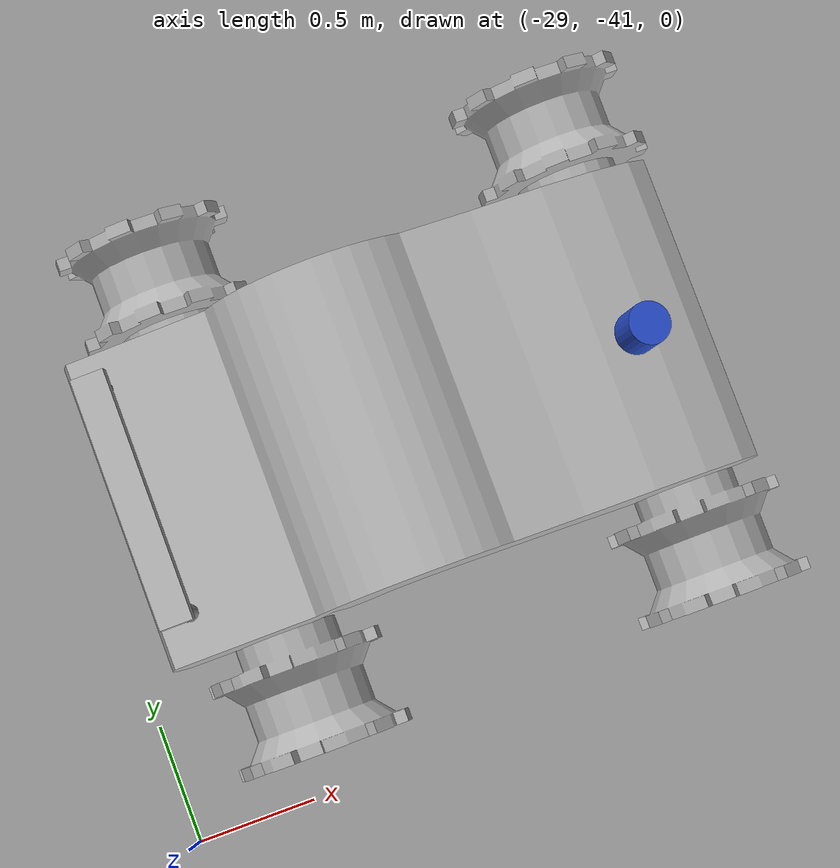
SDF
<sdf version="1.7">
 <world name="default">
  <light name="sun" type="directional">
   <pose>0 0 10 0 -0 0</pose>
   <diffuse>0.8 0.8 0.8 1</diffuse>
   <specular>0.2 0.2 0.2 1</specular>
   <attenuation>
    <range>1000</range>
    <constant>0.9</constant>
    <linear>0.01</linear>
    <quadratic>0.001</quadratic>
   </attenuation>
   <direction>-0.5 0.1 -0.9</direction>
   <spot><inner_angle>0</inner_angle><outer_angle>0</outer_angle><falloff>0</falloff></spot>
  </light>
  <model name="ground_plane">
   <static>1</static>
   <link name="link">
    <collision name="collision">
     <geometry><plane><normal>0 0 1</normal><size>100 100</size></plane></geometry>
     <surface><friction><ode><mu>100</mu><mu2>50</mu2></ode></friction></surface>
    </collision>
    <visual name="visual">
     <cast_shadows>0</cast_shadows>
     <geometry><plane><normal>0 0 1</normal><size>100 100</size></plane></geometry>
     <material>
      <script><uri>file://media/materials/scripts/gazebo.material</uri><name>Gazebo/Grey</name></script>
     </material>
    </visual>
   </link>
  </model>
  <gravity>0 0 -1.62</gravity>
  <magnetic_field>6e-06 2.3e-05 -4.2e-05</magnetic_field>
  <atmosphere type="adiabatic"/>
  <physics type="ode">
   <max_step_size>0.001</max_step_size>
   <real_time_factor>1</real_time_factor>
   <real_time_update_rate>1000</real_time_update_rate>
  </physics>
  <scene><ambient>0.4 0.4 0.4 1</ambient><background>0.7 0.7 0.7 1</background><shadows>1</shadows></scene>
  <spherical_coordinates>
   <surface_model>EARTH_WGS84</surface_model>
   <latitude_deg>0</latitude_deg>
   <longitude_deg>0</longitude_deg>
   <elevation>0</elevation>
   <heading_deg>0</heading_deg>
  </spherical_coordinates>
  <model name="kari_map">
   <link name="link_0">
    <inertial>
     <mass>100</mass>
     <inertia><ixx>16.6667</ixx><ixy>0</ixy><ixz>0</ixz><iyy>16.6667</iyy><iyz>0</iyz><izz>16.6667</izz></inertia>
    </inertial>
    <kinematic>1</kinematic>
    <visual name="visual">
     <geometry>
      <mesh><uri>/home/user/ros2_ws/src/rover_5k/model/kari_map/0719.dae</uri><scale>1 1 1</scale></mesh>
     </geometry>
     <material>
      <lighting>1</lighting>
      <script><uri>file://media/materials/scripts/gazebo.material</uri><name>Gazebo/Grey</name></script>
      <shader type="pixel"><normal_map>__default__</normal_map></shader>
      <ambient>0.3 0.3 0.3 1</ambient>
      <diffuse>0.7 0.7 0.7 1</diffuse>
      <specular>0.01 0.01 0.01 1</specular>
      <emissive>0 0 0 1</emissive>
     </material>
    </visual>
    <collision name="collision">
     <geometry>
      <mesh><uri>/home/user/ros2_ws/src/rover_5k/model/kari_map/0719.dae</uri><scale>1 1 1</scale></mesh>
     </geometry>
     <surface>
      <friction>
       <ode><mu>1</mu><mu2>1</mu2><fdir1>0 0 0</fdir1><slip1>0</slip1><slip2>0</slip2></ode>
       <torsional>
        <coefficient>1</coefficient>
        <patch_radius>0</patch_radius>
        <surface_radius>0</surface_radius>
        <use_patch_radius>1</use_patch_radius>
        <ode><slip>0</slip></ode>
       </torsional>
      </friction>
      <bounce><restitution_coefficient>0</restitution_coefficient><threshold>1e+06</threshold></bounce>
      <contact>
       <collide_without_contact>0</collide_without_contact>
       <collide_without_contact_bitmask>1</collide_without_contact_bitmask>
       <collide_bitmask>1</collide_bitmask>
       <ode>
        <soft_cfm>0</soft_cfm>
        <soft_erp>0.2</soft_erp>
        <kp>1e+13</kp>
        <kd>1</kd>
        <max_vel>0.01</max_vel>
        <min_depth>0</min_depth>
       </ode>
       <bullet>
        <split_impulse>1</split_impulse>
        <split_impulse_penetration_threshold>-0.01</split_impulse_penetration_threshold>
        <soft_cfm>0</soft_cfm>
        <soft_erp>0.2</soft_erp>
        <kp>1e+13</kp>
        <kd>1</kd>
       </bullet>
      </contact>
     </surface>
    </collision>
   </link>
   <static>0</static>
   <pose>-14.9673 2.44575 0 0 -0 0</pose>
  </model>
  <model name="rover_5k">
   <link name="Body">
    <inertial>
     <mass>20</mass>
     <inertia><ixx>1.66667</ixx><ixy>0</ixy><ixz>0</ixz><iyy>1.66667</iyy><iyz>0</iyz><izz>1.66667</izz></inertia>
    </inertial>
    <pose>0 0 0.5 0 -0 0</pose>
    <visual name="visual">
     <pose>0 0 -0.7 0 0 -1.5707</pose>
     <geometry>
      <mesh><uri>/home/user/ros2_ws/src/rover_5k/model/rover/dae/body.dae</uri><scale>0.5 0.5 0.5</scale></mesh>
     </geometry>
     <material>
      <script>
       <uri>model://rover/materials/scripts</uri>
       <uri>model://rover/materials/textures</uri>
       <name>rover/surface</name>
      </script>
     </material>
    </visual>
    <collision name="collision">
     <pose>0 0 -0.7 0 0 -1.5707</pose>
     <geometry>
      <mesh><uri>/home/user/ros2_ws/src/rover_5k/model/rover/dae/body.dae</uri><scale>0.5 0.5 0.5</scale></mesh>
     </geometry>
     <surface>
      <friction>
       <ode><mu>1</mu><mu2>1</mu2><fdir1>0 0 0</fdir1><slip1>0</slip1><slip2>0</slip2></ode>
       <torsional>
        <coefficient>1</coefficient>
        <patch_radius>0</patch_radius>
        <surface_radius>0</surface_radius>
        <use_patch_radius>1</use_patch_radius>
        <ode><slip>0</slip></ode>
       </torsional>
      </friction>
      <bounce><restitution_coefficient>0</restitution_coefficient><threshold>1e+06</threshold></bounce>
      <contact>
       <collide_without_contact>0</collide_without_contact>
       <collide_without_contact_bitmask>1</collide_without_contact_bitmask>
       <collide_bitmask>1</collide_bitmask>
       <ode>
        <soft_cfm>0</soft_cfm>
        <soft_erp>0.2</soft_erp>
        <kp>1e+13</kp>
        <kd>1</kd>
        <max_vel>0.01</max_vel>
        <min_depth>0</min_depth>
       </ode>
       <bullet>
        <split_impulse>1</split_impulse>
        <split_impulse_penetration_threshold>-0.01</split_impulse_penetration_threshold>
        <soft_cfm>0</soft_cfm>
        <soft_erp>0.2</soft_erp>
        <kp>1e+13</kp>
        <kd>1</kd>
       </bullet>
      </contact>
     </surface>
    </collision>
   </link>
   <link name="Bar">
    <inertial>
     <mass>2</mass>
     <inertia><ixx>0.6</ixx><ixy>0</ixy><ixz>0</ixz><iyy>0.6</iyy><iyz>0</iyz><izz>0.6</izz></inertia>
    </inertial>
    <pose>-1.20237 0.020377 0.781497 0 -0.085775 0</pose>
    <visual name="visual">
     <geometry><box><size>0.132686 1 0.057526</size></box></geometry>
     <material>
      <script>
       <uri>model://rover/materials/scripts</uri>
       <uri>model://rover/materials/textures</uri>
       <name>rover/bar</name>
      </script>
     </material>
    </visual>
    <collision name="collision">
     <geometry><box><size>0.132686 1 0.057526</size></box></geometry>
     <surface>
      <friction>
       <ode><mu>1</mu><mu2>1</mu2><fdir1>0 0 0</fdir1><slip1>0</slip1><slip2>0</slip2></ode>
       <torsional>
        <coefficient>1</coefficient>
        <patch_radius>0</patch_radius>
        <surface_radius>0</surface_radius>
        <use_patch_radius>1</use_patch_radius>
        <ode><slip>0</slip></ode>
       </torsional>
      </friction>
      <bounce><restitution_coefficient>0</restitution_coefficient><threshold>1e+06</threshold></bounce>
      <contact>
       <collide_without_contact>0</collide_without_contact>
       <collide_without_contact_bitmask>1</collide_without_contact_bitmask>
       <collide_bitmask>1</collide_bitmask>
       <ode>
        <soft_cfm>0</soft_cfm>
        <soft_erp>0.2</soft_erp>
        <kp>1e+13</kp>
        <kd>1</kd>
        <max_vel>0.01</max_vel>
        <min_depth>0</min_depth>
       </ode>
       <bullet>
        <split_impulse>1</split_impulse>
        <split_impulse_penetration_threshold>-0.01</split_impulse_penetration_threshold>
        <soft_cfm>0</soft_cfm>
        <soft_erp>0.2</soft_erp>
        <kp>1e+13</kp>
        <kd>1</kd>
       </bullet>
      </contact>
     </surface>
    </collision>
   </link>
   <link name="FL_Wheel">
    <inertial>
     <mass>10</mass>
     <inertia><ixx>1.66667</ixx><ixy>0</ixy><ixz>0</ixz><iyy>1.66667</iyy><iyz>0</iyz><izz>1.66667</izz></inertia>
    </inertial>
    <pose>0.837358 0.924069 0.073926 3.14 -0 0</pose>
    <visual name="visual">
     <pose>0 0 -0.3 0 -0 0</pose>
     <geometry>
      <mesh>
       <uri>/home/user/ros2_ws/src/rover_5k/model/rover/dae/gearwheel.dae</uri>
       <scale>0.5 0.5 0.5</scale>
      </mesh>
     </geometry>
     <material>
      <lighting>1</lighting>
      <script><uri>file://media/materials/scripts/gazebo.material</uri><name>Gazebo/Motorway</name></script>
      <shader type="pixel"><normal_map>__default__</normal_map></shader>
      <ambient>0.3 0.3 0.3 1</ambient>
      <diffuse>0.7 0.7 0.7 1</diffuse>
      <specular>0.01 0.01 0.01 1</specular>
      <emissive>0 0 0 1</emissive>
     </material>
    </visual>
    <collision name="collision">
     <pose>0 0 -0.3 0 -0 0</pose>
     <geometry>
      <mesh>
       <uri>/home/user/ros2_ws/src/rover_5k/model/rover/dae/gearwheel.dae</uri>
       <scale>0.5 0.5 0.5</scale>
      </mesh>
     </geometry>
     <surface>
      <friction>
       <ode><mu>1</mu><mu2>1</mu2><fdir1>0 0 0</fdir1><slip1>0</slip1><slip2>0</slip2></ode>
       <torsional>
        <coefficient>1</coefficient>
        <patch_radius>0</patch_radius>
        <surface_radius>0</surface_radius>
        <use_patch_radius>1</use_patch_radius>
        <ode><slip>0</slip></ode>
       </torsional>
      </friction>
      <bounce><restitution_coefficient>0</restitution_coefficient><threshold>1e+06</threshold></bounce>
      <contact>
       <collide_without_contact>0</collide_without_contact>
       <collide_without_contact_bitmask>1</collide_without_contact_bitmask>
       <collide_bitmask>1</collide_bitmask>
       <ode>
        <soft_cfm>0</soft_cfm>
        <soft_erp>0.2</soft_erp>
        <kp>1e+13</kp>
        <kd>1</kd>
        <max_vel>0.01</max_vel>
        <min_depth>0</min_depth>
       </ode>
       <bullet>
        <split_impulse>1</split_impulse>
        <split_impulse_penetration_threshold>-0.01</split_impulse_penetration_threshold>
        <soft_cfm>0</soft_cfm>
        <soft_erp>0.2</soft_erp>
        <kp>1e+13</kp>
        <kd>1</kd>
       </bullet>
      </contact>
     </surface>
    </collision>
   </link>
   <link name="FR_Wheel">
    <inertial>
     <mass>10</mass>
     <inertia><ixx>1.66667</ixx><ixy>0</ixy><ixz>0</ixz><iyy>1.66667</iyy><iyz>0</iyz><izz>1.66667</izz></inertia>
    </inertial>
    <pose>0.837358 -0.911499 0.074126 0 -0 0</pose>
    <visual name="visual">
     <pose>0 0 -0.3 0 -0 0</pose>
     <geometry>
      <mesh>
       <uri>/home/user/ros2_ws/src/rover_5k/model/rover/dae/gearwheel.dae</uri>
       <scale>0.5 0.5 0.5</scale>
      </mesh>
     </geometry>
     <material>
      <lighting>1</lighting>
      <script><uri>file://media/materials/scripts/gazebo.material</uri><name>Gazebo/Motorway</name></script>
      <shader type="pixel"><normal_map>__default__</normal_map></shader>
      <ambient>0.3 0.3 0.3 1</ambient>
      <diffuse>0.7 0.7 0.7 1</diffuse>
      <specular>0.01 0.01 0.01 1</specular>
      <emissive>0 0 0 1</emissive>
     </material>
    </visual>
    <collision name="collision">
     <pose>0 0 -0.3 0 -0 0</pose>
     <geometry>
      <mesh>
       <uri>/home/user/ros2_ws/src/rover_5k/model/rover/dae/gearwheel.dae</uri>
       <scale>0.5 0.5 0.5</scale>
      </mesh>
     </geometry>
     <surface>
      <friction>
       <ode><mu>1</mu><mu2>1</mu2><fdir1>0 0 0</fdir1><slip1>0</slip1><slip2>0</slip2></ode>
       <torsional>
        <coefficient>1</coefficient>
        <patch_radius>0</patch_radius>
        <surface_radius>0</surface_radius>
        <use_patch_radius>1</use_patch_radius>
        <ode><slip>0</slip></ode>
       </torsional>
      </friction>
      <bounce><restitution_coefficient>0</restitution_coefficient><threshold>1e+06</threshold></bounce>
      <contact>
       <collide_without_contact>0</collide_without_contact>
       <collide_without_contact_bitmask>1</collide_without_contact_bitmask>
       <collide_bitmask>1</collide_bitmask>
       <ode>
        <soft_cfm>0</soft_cfm>
        <soft_erp>0.2</soft_erp>
        <kp>1e+13</kp>
        <kd>1</kd>
        <max_vel>0.01</max_vel>
        <min_depth>0</min_depth>
       </ode>
       <bullet>
        <split_impulse>1</split_impulse>
        <split_impulse_penetration_threshold>-0.01</split_impulse_penetration_threshold>
        <soft_cfm>0</soft_cfm>
        <soft_erp>0.2</soft_erp>
        <kp>1e+13</kp>
        <kd>1</kd>
       </bullet>
      </contact>
     </surface>
    </collision>
   </link>
   <link name="Lidar">
    <inertial>
     <mass>0.00551611</mass>
     <inertia>
      <ixx>2.62879e-05</ixx>
      <ixy>0</ixy>
      <ixz>0</ixz>
      <iyy>2.62879e-05</iyy>
      <iyz>0</iyz>
      <izz>2.02995e-05</izz>
     </inertia>
    </inertial>
    <pose>0.829309 -0.028562 0.677019 0 0.248688 0</pose>
    <visual name="visual">
     <geometry><cylinder><radius>0.0857912</radius><length>0.18737</length></cylinder></geometry>
     <material>
      <lighting>1</lighting>
      <script><uri>file://media/materials/scripts/gazebo.material</uri><name>Gazebo/Blue</name></script>
      <shader type="pixel"/>
      <emissive>0 0 0 1</emissive>
     </material>
    </visual>
    <collision name="collision">
     <geometry><cylinder><radius>0.085791</radius><length>0.18737</length></cylinder></geometry>
     <surface>
      <friction>
       <ode><mu>1</mu><mu2>1</mu2><fdir1>0 0 0</fdir1><slip1>0</slip1><slip2>0</slip2></ode>
       <torsional>
        <coefficient>1</coefficient>
        <patch_radius>0</patch_radius>
        <surface_radius>0</surface_radius>
        <use_patch_radius>1</use_patch_radius>
        <ode><slip>0</slip></ode>
       </torsional>
      </friction>
      <bounce><restitution_coefficient>0</restitution_coefficient><threshold>1e+06</threshold></bounce>
      <contact>
       <collide_without_contact>0</collide_without_contact>
       <collide_without_contact_bitmask>1</collide_without_contact_bitmask>
       <collide_bitmask>1</collide_bitmask>
       <ode>
        <soft_cfm>0</soft_cfm>
        <soft_erp>0.2</soft_erp>
        <kp>1e+13</kp>
        <kd>1</kd>
        <max_vel>0.01</max_vel>
        <min_depth>0</min_depth>
       </ode>
       <bullet>
        <split_impulse>1</split_impulse>
        <split_impulse_penetration_threshold>-0.01</split_impulse_penetration_threshold>
        <soft_cfm>0</soft_cfm>
        <soft_erp>0.2</soft_erp>
        <kp>1e+13</kp>
        <kd>1</kd>
       </bullet>
      </contact>
     </surface>
    </collision>
   </link>
   <link name="RL_Wheel">
    <inertial>
     <mass>10</mass>
     <inertia><ixx>1.66667</ixx><ixy>0</ixy><ixz>0</ixz><iyy>1.66667</iyy><iyz>0</iyz><izz>1.66667</izz></inertia>
    </inertial>
    <pose>-0.875759 0.908026 0.073729 3.14 -0 0</pose>
    <visual name="visual">
     <pose>0 0 -0.3 0 -0 0</pose>
     <geometry>
      <mesh>
       <uri>/home/user/ros2_ws/src/rover_5k/model/rover/dae/gearwheel.dae</uri>
       <scale>0.5 0.5 0.5</scale>
      </mesh>
     </geometry>
     <material>
      <lighting>1</lighting>
      <script><uri>file://media/materials/scripts/gazebo.material</uri><name>Gazebo/Motorway</name></script>
      <shader type="pixel"><normal_map>__default__</normal_map></shader>
      <ambient>0.3 0.3 0.3 1</ambient>
      <diffuse>0.7 0.7 0.7 1</diffuse>
      <specular>0.01 0.01 0.01 1</specular>
      <emissive>0 0 0 1</emissive>
     </material>
    </visual>
    <collision name="collision">
     <pose>0 0 -0.3 0 -0 0</pose>
     <geometry>
      <mesh>
       <uri>/home/user/ros2_ws/src/rover_5k/model/rover/dae/gearwheel.dae</uri>
       <scale>0.5 0.5 0.5</scale>
      </mesh>
     </geometry>
     <surface>
      <friction>
       <ode><mu>1</mu><mu2>1</mu2><fdir1>0 0 0</fdir1><slip1>0</slip1><slip2>0</slip2></ode>
       <torsional>
        <coefficient>1</coefficient>
        <patch_radius>0</patch_radius>
        <surface_radius>0</surface_radius>
        <use_patch_radius>1</use_patch_radius>
        <ode><slip>0</slip></ode>
       </torsional>
      </friction>
      <bounce><restitution_coefficient>0</restitution_coefficient><threshold>1e+06</threshold></bounce>
      <contact>
       <collide_without_contact>0</collide_without_contact>
       <collide_without_contact_bitmask>1</collide_without_contact_bitmask>
       <collide_bitmask>1</collide_bitmask>
       <ode>
        <soft_cfm>0</soft_cfm>
        <soft_erp>0.2</soft_erp>
        <kp>1e+13</kp>
        <kd>1</kd>
        <max_vel>0.01</max_vel>
        <min_depth>0</min_depth>
       </ode>
       <bullet>
        <split_impulse>1</split_impulse>
        <split_impulse_penetration_threshold>-0.01</split_impulse_penetration_threshold>
        <soft_cfm>0</soft_cfm>
        <soft_erp>0.2</soft_erp>
        <kp>1e+13</kp>
        <kd>1</kd>
       </bullet>
      </contact>
     </surface>
    </collision>
   </link>
   <link name="RR_Wheel">
    <inertial>
     <mass>10</mass>
     <inertia><ixx>1.66667</ixx><ixy>0</ixy><ixz>0</ixz><iyy>1.66667</iyy><iyz>0</iyz><izz>1.66667</izz></inertia>
    </inertial>
    <pose>-0.875759 -0.919996 0.074126 0 -0 0</pose>
    <visual name="visual">
     <pose>0 0 -0.3 0 -0 0</pose>
     <geometry>
      <mesh>
       <uri>/home/user/ros2_ws/src/rover_5k/model/rover/dae/gearwheel.dae</uri>
       <scale>0.5 0.5 0.5</scale>
      </mesh>
     </geometry>
     <material>
      <lighting>1</lighting>
      <script><uri>file://media/materials/scripts/gazebo.material</uri><name>Gazebo/Motorway</name></script>
      <shader type="pixel"><normal_map>__default__</normal_map></shader>
      <ambient>0.3 0.3 0.3 1</ambient>
      <diffuse>0.7 0.7 0.7 1</diffuse>
      <specular>0.01 0.01 0.01 1</specular>
      <emissive>0 0 0 1</emissive>
     </material>
    </visual>
    <collision name="collision">
     <pose>0 0 -0.3 0 -0 0</pose>
     <geometry>
      <mesh>
       <uri>/home/user/ros2_ws/src/rover_5k/model/rover/dae/gearwheel.dae</uri>
       <scale>0.5 0.5 0.5</scale>
      </mesh>
     </geometry>
     <surface>
      <friction>
       <ode><mu>1</mu><mu2>1</mu2><fdir1>0 0 0</fdir1><slip1>0</slip1><slip2>0</slip2></ode>
       <torsional>
        <coefficient>1</coefficient>
        <patch_radius>0</patch_radius>
        <surface_radius>0</surface_radius>
        <use_patch_radius>1</use_patch_radius>
        <ode><slip>0</slip></ode>
       </torsional>
      </friction>
      <bounce><restitution_coefficient>0</restitution_coefficient><threshold>1e+06</threshold></bounce>
      <contact>
       <collide_without_contact>0</collide_without_contact>
       <collide_without_contact_bitmask>1</collide_without_contact_bitmask>
       <collide_bitmask>1</collide_bitmask>
       <ode>
        <soft_cfm>0</soft_cfm>
        <soft_erp>0.2</soft_erp>
        <kp>1e+13</kp>
        <kd>1</kd>
        <max_vel>0.01</max_vel>
        <min_depth>0</min_depth>
       </ode>
       <bullet>
        <split_impulse>1</split_impulse>
        <split_impulse_penetration_threshold>-0.01</split_impulse_penetration_threshold>
        <soft_cfm>0</soft_cfm>
        <soft_erp>0.2</soft_erp>
        <kp>1e+13</kp>
        <kd>1</kd>
       </bullet>
      </contact>
     </surface>
    </collision>
   </link>
   <link name="Support_LH">
    <inertial>
     <mass>1</mass>
     <inertia><ixx>0.3</ixx><ixy>0</ixy><ixz>0</ixz><iyy>0.3</iyy><iyz>0</iyz><izz>0.3</izz></inertia>
    </inertial>
    <pose>-1.19118 0.475511 0.665342 0 -0.129355 0</pose>
    <visual name="visual">
     <geometry><cylinder><radius>0.0338522</radius><length>0.19606</length></cylinder></geometry>
     <material>
      <lighting>1</lighting>
      <script><uri>file://media/materials/scripts/gazebo.material</uri><name>Gazebo/Grey</name></script>
      <shader type="pixel"/>
      <emissive>0 0 0 1</emissive>
     </material>
    </visual>
    <collision name="collision">
     <geometry><cylinder><radius>0.033852</radius><length>0.19606</length></cylinder></geometry>
     <surface>
      <friction>
       <ode><mu>1</mu><mu2>1</mu2><fdir1>0 0 0</fdir1><slip1>0</slip1><slip2>0</slip2></ode>
       <torsional>
        <coefficient>1</coefficient>
        <patch_radius>0</patch_radius>
        <surface_radius>0</surface_radius>
        <use_patch_radius>1</use_patch_radius>
        <ode><slip>0</slip></ode>
       </torsional>
      </friction>
      <bounce><restitution_coefficient>0</restitution_coefficient><threshold>1e+06</threshold></bounce>
      <contact>
       <collide_without_contact>0</collide_without_contact>
       <collide_without_contact_bitmask>1</collide_without_contact_bitmask>
       <collide_bitmask>1</collide_bitmask>
       <ode>
        <soft_cfm>0</soft_cfm>
        <soft_erp>0.2</soft_erp>
        <kp>1e+13</kp>
        <kd>1</kd>
        <max_vel>0.01</max_vel>
        <min_depth>0</min_depth>
       </ode>
       <bullet>
        <split_impulse>1</split_impulse>
        <split_impulse_penetration_threshold>-0.01</split_impulse_penetration_threshold>
        <soft_cfm>0</soft_cfm>
        <soft_erp>0.2</soft_erp>
        <kp>1e+13</kp>
        <kd>1</kd>
       </bullet>
      </contact>
     </surface>
    </collision>
   </link>
   <link name="Support_RH">
    <inertial>
     <mass>1</mass>
     <inertia><ixx>0.3</ixx><ixy>0</ixy><ixz>0</ixz><iyy>0.3</iyy><iyz>0</iyz><izz>0.3</izz></inertia>
    </inertial>
    <pose>-1.1735 -0.441038 0.665342 0 -0.129355 0</pose>
    <visual name="visual_0">
     <geometry><cylinder><radius>0.0338522</radius><length>0.19606</length></cylinder></geometry>
     <material>
      <lighting>1</lighting>
      <script><uri>file://media/materials/scripts/gazebo.material</uri><name>Gazebo/Grey</name></script>
      <shader type="pixel"/>
      <emissive>0 0 0 1</emissive>
     </material>
    </visual>
    <collision name="collision">
     <geometry><cylinder><radius>0.033852</radius><length>0.19606</length></cylinder></geometry>
     <surface>
      <friction>
       <ode><mu>1</mu><mu2>1</mu2><fdir1>0 0 0</fdir1><slip1>0</slip1><slip2>0</slip2></ode>
       <torsional>
        <coefficient>1</coefficient>
        <patch_radius>0</patch_radius>
        <surface_radius>0</surface_radius>
        <use_patch_radius>1</use_patch_radius>
        <ode><slip>0</slip></ode>
       </torsional>
      </friction>
      <bounce><restitution_coefficient>0</restitution_coefficient><threshold>1e+06</threshold></bounce>
      <contact>
       <collide_without_contact>0</collide_without_contact>
       <collide_without_contact_bitmask>1</collide_without_contact_bitmask>
       <collide_bitmask>1</collide_bitmask>
       <ode>
        <soft_cfm>0</soft_cfm>
        <soft_erp>0.2</soft_erp>
        <kp>1e+13</kp>
        <kd>1</kd>
        <max_vel>0.01</max_vel>
        <min_depth>0</min_depth>
       </ode>
       <bullet>
        <split_impulse>1</split_impulse>
        <split_impulse_penetration_threshold>-0.01</split_impulse_penetration_threshold>
        <soft_cfm>0</soft_cfm>
        <soft_erp>0.2</soft_erp>
        <kp>1e+13</kp>
        <kd>1</kd>
       </bullet>
      </contact>
     </surface>
    </collision>
   </link>
   <joint name="Body_Support_RH_joint" type="fixed">
    <parent>Body</parent>
    <child>Support_RH</child>
    <physics>
     <ode><limit><cfm>0</cfm><erp>0.2</erp></limit><suspension><cfm>0</cfm><erp>0.2</erp></suspension></ode>
    </physics>
   </joint>
   <joint name="Body_Bar_joint" type="fixed">
    <parent>Body</parent>
    <child>Bar</child>
    <physics>
     <ode><limit><cfm>0</cfm><erp>0.2</erp></limit><suspension><cfm>0</cfm><erp>0.2</erp></suspension></ode>
    </physics>
   </joint>
   <joint name="Body_Lidar_joint" type="fixed">
    <parent>Body</parent>
    <child>Lidar</child>
    <physics>
     <ode><limit><cfm>0</cfm><erp>0.2</erp></limit><suspension><cfm>0</cfm><erp>0.2</erp></suspension></ode>
    </physics>
   </joint>
   <joint name="Body_Support_LH_joint" type="fixed">
    <parent>Body</parent>
    <child>Support_LH</child>
    <physics>
     <ode><limit><cfm>0</cfm><erp>0.2</erp></limit><suspension><cfm>0</cfm><erp>0.2</erp></suspension></ode>
    </physics>
   </joint>
   <joint name="FL_joint" type="revolute">
    <parent>Body</parent>
    <child>FL_Wheel</child>
    <axis>
     <xyz>0 -1 0</xyz>
     <limit>
      <lower>-1.79769e+308</lower>
      <upper>1.79769e+308</upper>
      <effort>-1</effort>
      <velocity>-1</velocity>
     </limit>
     <dynamics>
      <spring_reference>0</spring_reference>
      <spring_stiffness>0</spring_stiffness>
      <damping>0</damping>
      <friction>0</friction>
     </dynamics>
    </axis>
    <physics>
     <ode><limit><cfm>0</cfm><erp>0.2</erp></limit><suspension><cfm>0</cfm><erp>0.2</erp></suspension></ode>
    </physics>
   </joint>
   <joint name="FR_joint" type="revolute">
    <parent>Body</parent>
    <child>FR_Wheel</child>
    <axis>
     <xyz>0 1 0</xyz>
     <limit>
      <lower>-1.79769e+308</lower>
      <upper>1.79769e+308</upper>
      <effort>-1</effort>
      <velocity>-1</velocity>
     </limit>
     <dynamics>
      <spring_reference>0</spring_reference>
      <spring_stiffness>0</spring_stiffness>
      <damping>0</damping>
      <friction>0</friction>
     </dynamics>
    </axis>
    <physics>
     <ode><limit><cfm>0</cfm><erp>0.2</erp></limit><suspension><cfm>0</cfm><erp>0.2</erp></suspension></ode>
    </physics>
   </joint>
   <joint name="RL_joint" type="revolute">
    <parent>Body</parent>
    <child>RL_Wheel</child>
    <axis>
     <xyz>0 -1 0</xyz>
     <limit>
      <lower>-1.79769e+308</lower>
      <upper>1.79769e+308</upper>
      <effort>-1</effort>
      <velocity>-1</velocity>
     </limit>
     <dynamics>
      <spring_reference>0</spring_reference>
      <spring_stiffness>0</spring_stiffness>
      <damping>0</damping>
      <friction>0</friction>
     </dynamics>
    </axis>
    <physics>
     <ode><limit><cfm>0</cfm><erp>0.2</erp></limit><suspension><cfm>0</cfm><erp>0.2</erp></suspension></ode>
    </physics>
   </joint>
   <joint name="RR_joint" type="revolute">
    <parent>Body</parent>
    <child>RR_Wheel</child>
    <axis>
     <xyz>0 1 0</xyz>
     <limit>
      <lower>-1.79769e+308</lower>
      <upper>1.79769e+308</upper>
      <effort>-1</effort>
      <velocity>-1</velocity>
     </limit>
     <dynamics>
      <spring_reference>0</spring_reference>
      <spring_stiffness>0</spring_stiffness>
      <damping>0</damping>
      <friction>0</friction>
     </dynamics>
    </axis>
    <physics>
     <ode><limit><cfm>0</cfm><erp>0.2</erp></limit><suspension><cfm>0</cfm><erp>0.2</erp></suspension></ode>
    </physics>
   </joint>
   <joint name="Bar_Support_LH_joint" type="fixed">
    <parent>Support_LH</parent>
    <child>Bar</child>
    <physics>
     <ode><limit><cfm>0</cfm><erp>0.2</erp></limit><suspension><cfm>0</cfm><erp>0.2</erp></suspension></ode>
    </physics>
   </joint>
   <joint name="Bar_Support_RH_Joint" type="fixed">
    <parent>Support_RH</parent>
    <child>Bar</child>
    <physics>
     <ode><limit><cfm>0</cfm><erp>0.2</erp></limit><suspension><cfm>0</cfm><erp>0.2</erp></suspension></ode>
    </physics>
   </joint>
   <static>0</static>
   <plugin name="diff_front" filename="libgazebo_ros_diff_drive.so">
    <ros><namespace>/rover_5k</namespace></ros>
    <left_joint>FL_joint</left_joint>
    <right_joint>FR_joint</right_joint>
    <wheel_separation>1.65</wheel_separation>
    <wheel_diameter>0.3</wheel_diameter>
    <max_wheel_torque>20</max_wheel_torque>
    <max_wheel_acceleration>1.0</max_wheel_acceleration>
    <publish_odom>1</publish_odom>
    <publish_odom_tf>1</publish_odom_tf>
    <odometry_frame>odom_demo</odometry_frame>
    <robot_base_frame>Body</robot_base_frame>
   </plugin>
   <plugin name="diff_rear" filename="libgazebo_ros_diff_drive.so">
    <ros><namespace>/rover_5k</namespace></ros>
    <left_joint>RL_joint</left_joint>
    <right_joint>RR_joint</right_joint>
    <wheel_separation>1.65</wheel_separation>
    <wheel_diameter>0.3</wheel_diameter>
    <max_wheel_torque>20</max_wheel_torque>
    <max_wheel_acceleration>1.0</max_wheel_acceleration>
    <publish_odom>1</publish_odom>
    <publish_odom_tf>1</publish_odom_tf>
    <odometry_frame>odom_demo</odometry_frame>
    <robot_base_frame>Body</robot_base_frame>
   </plugin>
   <pose>-27.4849 -39.7048 0.298952 0 -0 0</pose>
  </model>
 </world>
</sdf>
